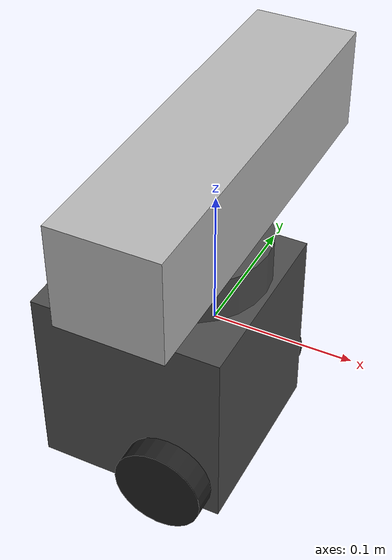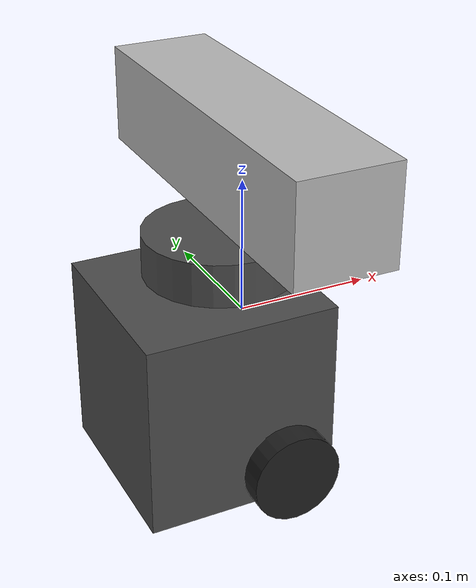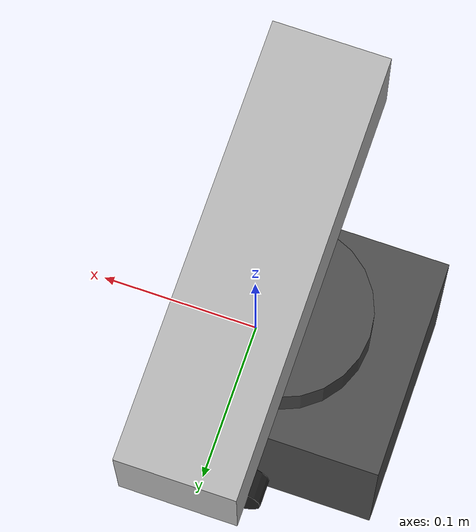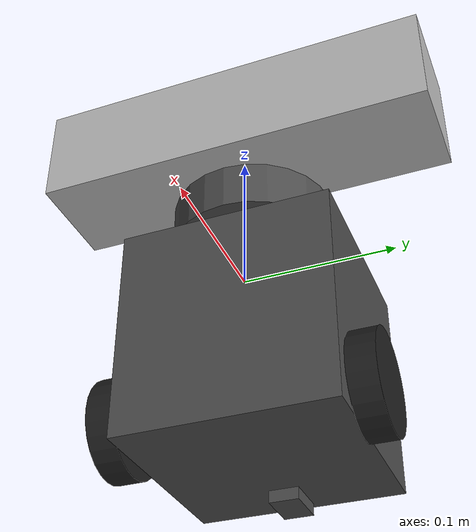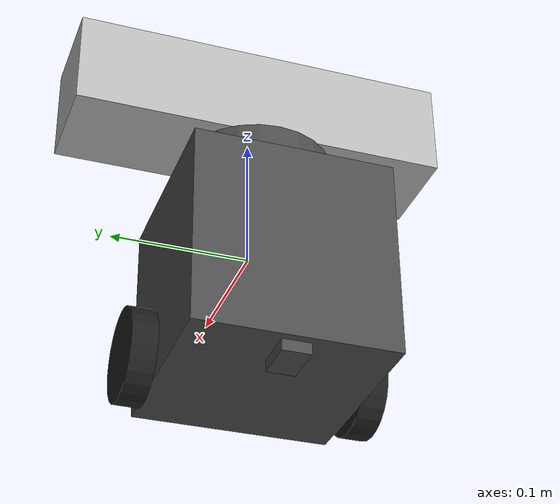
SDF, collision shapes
<?xml version='1.0'?>
<sdf version='1.7'>
  <model name='burger_kinect'>
    <model name='kinect'>
      <pose>0.000334 -5.4e-05 0.124096 0 -0 0</pose>
      <link name='link'>
        <inertial>
          <mass>0.1</mass>
        </inertial>
        <collision name='collision'>
          <geometry>
            <box>
              <size>0.073 0.276 0.072</size>
            </box>
          </geometry>
        </collision>
        <visual name='visual'>
          <geometry>
            <mesh>
              <uri>model://kinect/meshes/kinect.dae</uri>
            </mesh>
          </geometry>
        </visual>
        <sensor name='camera' type='depth'>
          <update_rate>20</update_rate>
          <camera>
            <horizontal_fov>1.0472</horizontal_fov>
            <image>
              <width>640</width>
              <height>480</height>
              <format>R8G8B8</format>
            </image>
            <clip>
              <near>0.05</near>
              <far>3</far>
            </clip>
          </camera>
          <plugin name='camera_plugin' filename='libgazebo_ros_openni_kinect.so'>
            <baseline>0.2</baseline>
            <alwaysOn>1</alwaysOn>
            <updateRate>0.0</updateRate>
            <cameraName>camera_ir</cameraName>
            <imageTopicName>/camera/color/image_raw</imageTopicName>
            <cameraInfoTopicName>/camera/color/camera_info</cameraInfoTopicName>
            <depthImageTopicName>/camera/depth/image_raw</depthImageTopicName>
            <depthImageCameraInfoTopicName>/camera/depth/camera_info</depthImageCameraInfoTopicName>
            <pointCloudTopicName>/camera/depth/points</pointCloudTopicName>
            <frameName>camera_link</frameName>
            <pointCloudCutoff>0.5</pointCloudCutoff>
            <pointCloudCutoffMax>3.0</pointCloudCutoffMax>
            <distortionK1>0</distortionK1>
            <distortionK2>0</distortionK2>
            <distortionK3>0</distortionK3>
            <distortionT1>0</distortionT1>
            <distortionT2>0</distortionT2>
            <CxPrime>0</CxPrime>
            <Cx>0</Cx>
            <Cy>0</Cy>
            <focalLength>0</focalLength>
            <hackBaseline>0</hackBaseline>
          </plugin>
        </sensor>
      </link>
    </model>
    <model name='robot'>
      <link name='base_footprint'>
        <inertial>
          <pose>-0.00429 0 0.030734 0 -0 0</pose>
          <mass>0.944735</mass>
          <inertia>
            <ixx>0.00717896</ixx>
            <ixy>-1.22941e-05</ixy>
            <ixz>0.00057674</ixz>
            <iyy>0.00721804</iyy>
            <iyz>-5.01209e-06</iyz>
            <izz>0.00413858</izz>
          </inertia>
        </inertial>
        <collision name='base_footprint_fixed_joint_lump__base_link_collision'>
          <pose>-0.032 0 0.08 0 -0 0</pose>
          <geometry>
            <box>
              <size>0.14 0.14 0.143</size>
            </box>
          </geometry>
          <surface>
            <contact>
              <ode/>
            </contact>
            <friction>
              <ode/>
            </friction>
          </surface>
        </collision>
        <collision name='base_footprint_fixed_joint_lump__caster_back_link_collision_1'>
          <pose>-0.081 1e-06 0.005 -1.57 0 0</pose>
          <geometry>
            <box>
              <size>0.03 0.009 0.02</size>
            </box>
          </geometry>
          <surface>
            <contact>
              <ode>
                <kp>1e+06</kp>
                <kd>100</kd>
                <max_vel>1</max_vel>
                <min_depth>0.001</min_depth>
              </ode>
            </contact>
            <friction>
              <ode>
                <mu>0.1</mu>
                <mu2>0.1</mu2>
              </ode>
            </friction>
          </surface>
        </collision>
        <collision name='base_footprint_fixed_joint_lump__base_scan_collision_2'>
          <pose>-0.017 0 0.1755 0 -0 0</pose>
          <geometry>
            <cylinder>
              <length>0.0315</length>
              <radius>0.055</radius>
            </cylinder>
          </geometry>
          <surface>
            <contact>
              <ode/>
            </contact>
            <friction>
              <ode/>
            </friction>
          </surface>
        </collision>
        <visual name='base_footprint_fixed_joint_lump__base_link_visual'>
          <pose>-0.032 0 0.01 0 -0 0</pose>
          <geometry>
            <mesh>
              <scale>0.001 0.001 0.001</scale>
              <uri>model://self_meshes/bases/burger_base.dae</uri>
            </mesh>
          </geometry>
          <material>
            <script>
              <name>Gazebo/DarkGrey</name>
              <uri>file://media/materials/scripts/gazebo.material</uri>
            </script>
          </material>
        </visual>
        <visual name='base_footprint_fixed_joint_lump__base_scan_visual_1'>
          <pose>-0.032 0 0.182 0 -0 0</pose>
          <geometry>
            <mesh>
              <scale>0.001 0.001 0.001</scale>
              <uri>model://self_meshes/sensors/lds.dae</uri>
            </mesh>
          </geometry>
          <material>
            <script>
              <name>Gazebo/FlatBlack</name>
              <uri>file://media/materials/scripts/gazebo.material</uri>
            </script>
          </material>
        </visual>
        <sensor name='imu' type='imu'>
          <always_on>1</always_on>
          <visualize>0</visualize>
          <pose>-0.032 0 0.078 0 -0 0</pose>
          <imu/>
        </sensor>
        <sensor name='lds_lfcd_sensor' type='ray'>
          <visualize>0</visualize>
          <update_rate>5</update_rate>
          <ray>
            <scan>
              <horizontal>
                <samples>360</samples>
                <resolution>1</resolution>
                <min_angle>0</min_angle>
                <max_angle>6.28319</max_angle>
              </horizontal>
            </scan>
            <range>
              <min>0.12</min>
              <max>20</max>
              <resolution>0.015</resolution>
            </range>
            <noise>
              <type>gaussian</type>
              <mean>0</mean>
              <stddev>0.01</stddev>
            </noise>
          </ray>
          <plugin name='gazebo_ros_lds_lfcd_controller' filename='libgazebo_ros_laser.so'>
            <topicName>scan</topicName>
            <frameName>base_scan</frameName>
          </plugin>
          <pose>-0.032 0 0.182 0 -0 0</pose>
        </sensor>
      </link>
      <joint name='wheel_left_joint' type='revolute'>
        <pose>0 0 0 0 -0 0</pose>
        <parent>base_footprint</parent>
        <child>wheel_left_link</child>
        <axis>
          <xyz expressed_in='__model__'>0 1 0</xyz>
          <limit>
            <lower>-1e+16</lower>
            <upper>1e+16</upper>
          </limit>
          <dynamics>
            <spring_reference>0</spring_reference>
            <spring_stiffness>0</spring_stiffness>
          </dynamics>
        </axis>
      </joint>
      <link name='wheel_left_link'>
        <pose>0 0.08 0.033 -1.57 0 0</pose>
        <inertial>
          <pose>0 0 0 0 -0 0</pose>
          <mass>0.0284989</mass>
          <inertia>
            <ixx>1.11756e-05</ixx>
            <ixy>-4.23698e-11</ixy>
            <ixz>-5.93817e-09</ixz>
            <iyy>1.11924e-05</iyy>
            <iyz>-1.44001e-11</iyz>
            <izz>2.07126e-05</izz>
          </inertia>
        </inertial>
        <collision name='wheel_left_link_collision'>
          <pose>0 0 0 0 -0 0</pose>
          <geometry>
            <cylinder>
              <length>0.018</length>
              <radius>0.033</radius>
            </cylinder>
          </geometry>
          <surface>
            <contact>
              <ode>
                <kp>500000</kp>
                <kd>10</kd>
                <max_vel>0.1</max_vel>
                <min_depth>0.001</min_depth>
              </ode>
            </contact>
            <friction>
              <ode>
                <mu>0.1</mu>
                <mu2>0.1</mu2>
                <fdir1>1 0 0</fdir1>
              </ode>
            </friction>
          </surface>
        </collision>
        <visual name='wheel_left_link_visual'>
          <pose>0 0 0 1.57 -0 0</pose>
          <geometry>
            <mesh>
              <scale>0.001 0.001 0.001</scale>
              <uri>model://self_meshes/wheels/left_tire.dae</uri>
            </mesh>
          </geometry>
          <material>
            <script>
              <name>Gazebo/FlatBlack</name>
              <uri>file://media/materials/scripts/gazebo.material</uri>
            </script>
          </material>
        </visual>
      </link>
      <joint name='wheel_right_joint' type='revolute'>
        <pose>0 0 0 0 -0 0</pose>
        <parent>base_footprint</parent>
        <child>wheel_right_link</child>
        <axis>
          <xyz expressed_in='__model__'>0 1 0</xyz>
          <limit>
            <lower>-1e+16</lower>
            <upper>1e+16</upper>
          </limit>
          <dynamics>
            <spring_reference>0</spring_reference>
            <spring_stiffness>0</spring_stiffness>
          </dynamics>
        </axis>
      </joint>
      <link name='wheel_right_link'>
        <pose>0 -0.08 0.033 -1.57 0 0</pose>
        <inertial>
          <pose>0 0 0 0 -0 0</pose>
          <mass>0.0284989</mass>
          <inertia>
            <ixx>1.11756e-05</ixx>
            <ixy>-4.23698e-11</ixy>
            <ixz>-5.93817e-09</ixz>
            <iyy>1.11924e-05</iyy>
            <iyz>-1.44001e-11</iyz>
            <izz>2.07126e-05</izz>
          </inertia>
        </inertial>
        <collision name='wheel_right_link_collision'>
          <pose>0 0 0 0 -0 0</pose>
          <geometry>
            <cylinder>
              <length>0.018</length>
              <radius>0.033</radius>
            </cylinder>
          </geometry>
          <surface>
            <contact>
              <ode>
                <kp>500000</kp>
                <kd>10</kd>
                <max_vel>0.1</max_vel>
                <min_depth>0.001</min_depth>
              </ode>
            </contact>
            <friction>
              <ode>
                <mu>0.1</mu>
                <mu2>0.1</mu2>
                <fdir1>1 0 0</fdir1>
              </ode>
            </friction>
          </surface>
        </collision>
        <visual name='wheel_right_link_visual'>
          <pose>0 0 0 1.57 -0 0</pose>
          <geometry>
            <mesh>
              <scale>0.001 0.001 0.001</scale>
              <uri>model://self_meshes/wheels/right_tire.dae</uri>
            </mesh>
          </geometry>
          <material>
            <script>
              <name>Gazebo/FlatBlack</name>
              <uri>file://media/materials/scripts/gazebo.material</uri>
            </script>
          </material>
        </visual>
      </link>
      <plugin name='turtlebot3_burger_controller' filename='libgazebo_ros_diff_drive.so'>
        <commandTopic>cmd_vel</commandTopic>
        <odometryTopic>odom</odometryTopic>
        <odometryFrame>odom</odometryFrame>
        <odometrySource>world</odometrySource>
        <publishOdomTF>1</publishOdomTF>
        <robotBaseFrame>base_footprint</robotBaseFrame>
        <publishWheelTF>0</publishWheelTF>
        <publishTf>1</publishTf>
        <publishWheelJointState>1</publishWheelJointState>
        <legacyMode>0</legacyMode>
        <updateRate>30</updateRate>
        <leftJoint>wheel_left_joint</leftJoint>
        <rightJoint>wheel_right_joint</rightJoint>
        <wheelSeparation>0.160</wheelSeparation>
        <wheelDiameter>0.066</wheelDiameter>
        <wheelAcceleration>1</wheelAcceleration>
        <wheelTorque>30</wheelTorque>
        <rosDebugLevel>na</rosDebugLevel>
      </plugin>
      <static>0</static>
      <plugin name='imu_plugin' filename='libgazebo_ros_imu.so'>
        <alwaysOn>1</alwaysOn>
        <topicName>imu</topicName>
        <serviceName>imu_service</serviceName>
        <gaussianNoise>0.0</gaussianNoise>
        <updateRate>0</updateRate>
        <imu>
          <noise>
            <type>gaussian</type>
            <rate>
              <mean>0.0</mean>
              <stddev>2e-4</stddev>
              <bias_mean>0.0000075</bias_mean>
              <bias_stddev>0.0000008</bias_stddev>
            </rate>
            <accel>
              <mean>0.0</mean>
              <stddev>1.7e-2</stddev>
              <bias_mean>0.1</bias_mean>
              <bias_stddev>0.001</bias_stddev>
            </accel>
          </noise>
        </imu>
        <bodyName>base_footprint</bodyName>
        <frameName>base_footprint</frameName>
        <xyzOffset>0.064 0 -0.156</xyzOffset>
        <rpyOffset>0 -0 0</rpyOffset>
      </plugin>
      <pose>-0.000334 5.4e-05 -0.124096 0 -0 0</pose>
    </model>
    <joint name='base_footprint_JOINT_0' type='fixed'>
      <parent>robot::base_footprint</parent>
      <child>kinect::link</child>
      <pose>0 0 0 0 -0 0</pose>
      <physics>
        <ode>
          <limit>
            <cfm>0</cfm>
            <erp>0.2</erp>
          </limit>
          <suspension>
            <cfm>0</cfm>
            <erp>0.2</erp>
          </suspension>
        </ode>
      </physics>
    </joint>
    <static>0</static>
    <allow_auto_disable>1</allow_auto_disable>
  </model>
</sdf>
